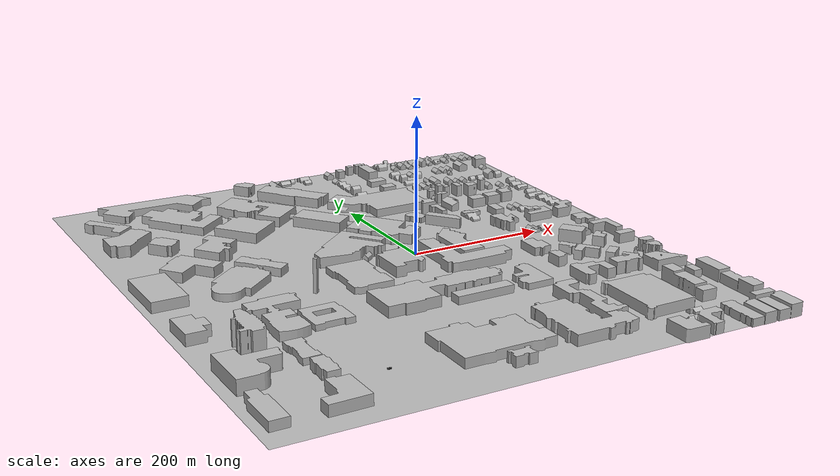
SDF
<sdf version='1.7'>
  <world name='default'>
    <plugin name="set_entity_state" filename="libgazebo_ros_state.so"/>
    <light name='sun' type='directional'>
      <cast_shadows>1</cast_shadows>
      <pose>0 0 10 0 -0 0</pose>
      <diffuse>0.8 0.8 0.8 1</diffuse>
      <specular>0.2 0.2 0.2 1</specular>
      <attenuation>
        <range>1000</range>
        <constant>0.9</constant>
        <linear>0.01</linear>
        <quadratic>0.001</quadratic>
      </attenuation>
      <direction>-0.5 0.1 -0.9</direction>
      <spot>
        <inner_angle>0</inner_angle>
        <outer_angle>0</outer_angle>
        <falloff>0</falloff>
      </spot>
    </light>
    <gravity>0 0 0</gravity>
    <magnetic_field>6e-06 2.3e-05 -4.2e-05</magnetic_field>
    <atmosphere type='adiabatic'/>
    <physics type='ode'>
      <max_step_size>0.001</max_step_size>
      <real_time_factor>1</real_time_factor>
      <real_time_update_rate>1000</real_time_update_rate>
    </physics>
    <scene>
      <ambient>0.9 0.9 0.9 1</ambient>
      <background>0.7 0.7 0.7 1</background>
      <shadows>1</shadows>
    <sky>
    <clouds>
      <speed>12</speed>
    </clouds>
    </sky>
    </scene>
    <model name="purdue">
      <include>
        <uri>model://purdue</uri>
        <name>purdue</name>
      </include>
      <pose>-40 0 0 0 0 0</pose>
    </model>

    <model name="laser_0">
      <static>false</static>
      <pose>-207 -304 1 0 0 0</pose>
      <link name="laser_link">
        <visual name="laser_visual">
          <geometry>
            <box>
              <size>5 2 2</size>
            </box>
          </geometry>
          <material>
            <ambient>0 0 0 1</ambient>
            <diffuse>0 0 0 1</diffuse>
            <specular>0 0 0 0</specular>
            <emissive>1 1 0 1</emissive>
          </material>
        </visual>
        <collision name='laser_collision'>
          <laser_retro>0</laser_retro>
          <max_contacts>10</max_contacts>
          <pose>0 0 0 0 -0 0</pose>
          <geometry>
            <box>
              <size>0.02 .01 .01</size>
            </box>
          </geometry>
        </collision>
        <sensor name="skycam" type="wideanglecamera">
          <pose>0 0 2.1 0 -1.5707 0</pose>
          <camera>
            <horizontal_fov>3.1415</horizontal_fov>
            <image>
              <width>500</width>
              <height>500</height>
            </image>
            <clip>
              <near>0.1</near>
              <far>100</far>
            </clip>
            <lens>
              <type>stereographic</type>
              <scale_to_hfov>true</scale_to_hfov>
              <cutoff_angle>3.1415</cutoff_angle>
              <env_texture_size>512</env_texture_size>
            </lens>
            <distortion>
              <k1>0.0</k1>
              <k2>0.0</k2>
              <k3>0.0</k3>
              <p1>0.0</p1>
              <p2>0.0</p2>
            </distortion>
          </camera>
          <always_on>1</always_on>
          <update_rate>1</update_rate>
          <plugin name="skycam_controller" filename="libgazebo_ros_camera.so">
            <hack_baseline>0.07</hack_baseline>
          </plugin>
        </sensor>
        <!-- ray sensor -->
        <sensor name="sensor_ray" type="ray">
          <ray>
            <scan>
              <horizontal>
                <samples>62</samples>
                <resolution>1</resolution>
                <min_angle>0</min_angle>
                <max_angle>0</max_angle>
              </horizontal>
              <vertical>
                <samples>1</samples>
                <resolution>1</resolution>
                <min_angle>0.8</min_angle>
                <max_angle>0.8</max_angle>
              </vertical>
            </scan>
            <range>
              <min>0.05</min>
              <max>50.0</max>
            </range>
          </ray>
          <always_on>true</always_on>
          <update_rate>1000.0</update_rate>
          <plugin name="laserscan" filename="libGNSSMultipathSensorPlugin.so">
            <ros>
              <namespace>/gnss_multipath_plugin</namespace>
              <remapping>~/out:=scan</remapping>
            </ros>
            <output_type>sensor_msgs/LaserScan</output_type>
            <disableNoise>0</disableNoise>
            <origin_latitude>40.427751</origin_latitude>
            <origin_longitude>-86.912004</origin_longitude>
            <origin_altitude>0</origin_altitude>
            <date_time>15/05/2021 02:30:00</date_time>
          </plugin>
        </sensor>

        <self_collide>0</self_collide>
      </link>
    </model>
    <gui fullscreen='0'>
      <camera name='user_camera'>
        <pose>0 0 100 0 1.57 0</pose>
        <view_controller>orbit</view_controller>
        <projection_type>orthographic</projection_type>
      </camera>
    </gui>
  </world>
</sdf>
<!-- vim: set et ft=xml fenc=utf-8 ff=unix sts=0 sw=2 ts=2 : -->

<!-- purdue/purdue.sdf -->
<sdf version="1.5">
  <model name="purdue">
    <pose>0 0 0 0 0 0</pose>
    <static>true</static>
    <link name="terrain">
      <visual name="visual">
        <geometry>
          <mesh><uri>model://purdue/media/terrain.dae</uri></mesh>
        </geometry>
        <pose>0 0 -3.5 0 0 0</pose>
      </visual>
      <collision name="collision">
        <geometry>
          <mesh><uri>model://purdue/media/terrain.dae</uri></mesh>
        </geometry>
        <pose>0 0 -3.5 0 0 0</pose>
      </collision>
    </link>

    <link name="buildings">
      <visual name="visual">
        <geometry>
          <mesh><uri>model://purdue/media/buildings.dae</uri></mesh>
        </geometry>
        <pose>0 0 -3.5 0 0 0</pose>
      </visual>
      <collision name="collision">
        <geometry>
          <mesh><uri>model://purdue/media/buildings.dae</uri></mesh>
        </geometry>
        <pose>0 0 -3.5 0 0 0</pose>
      </collision>
    </link>
  </model>
</sdf>
